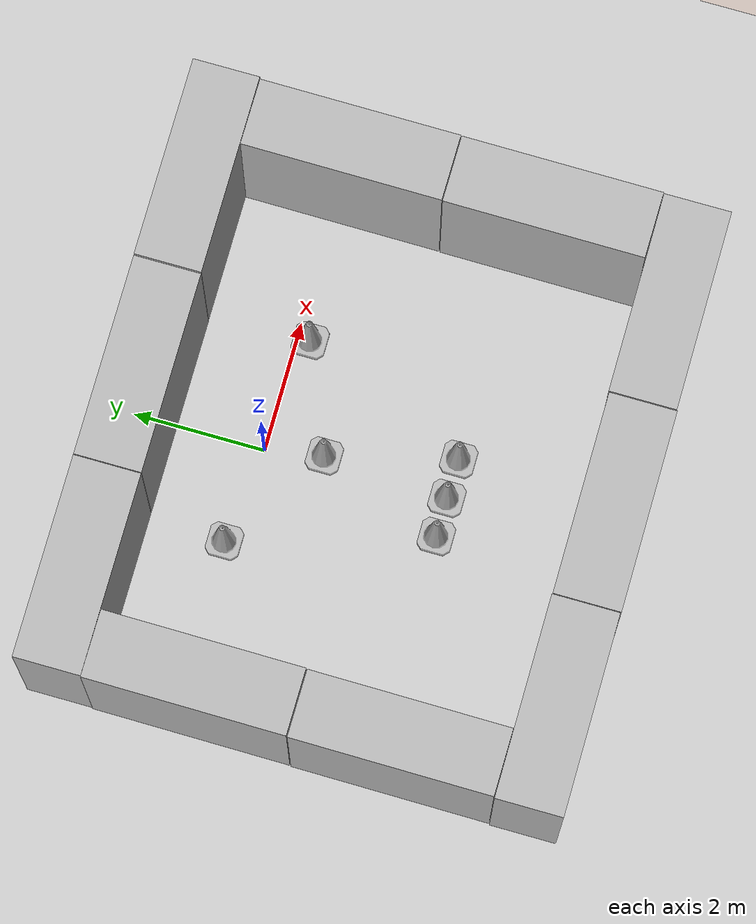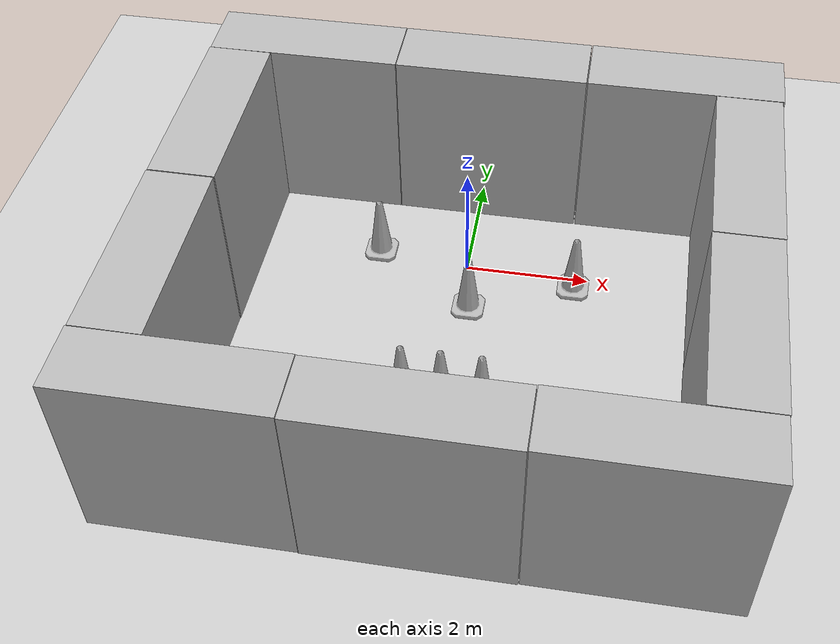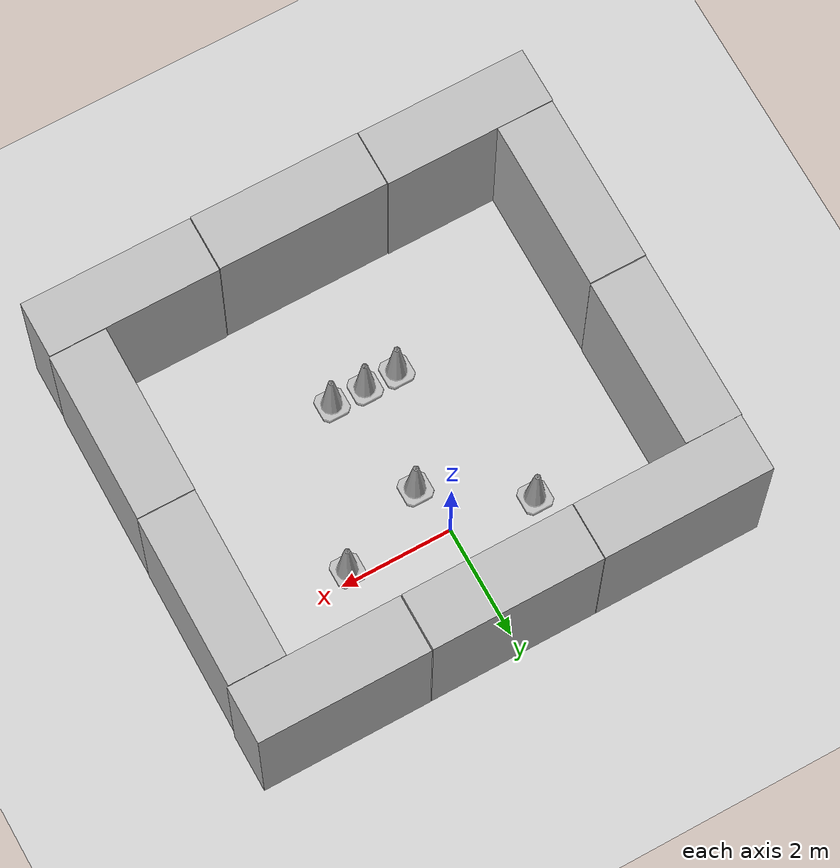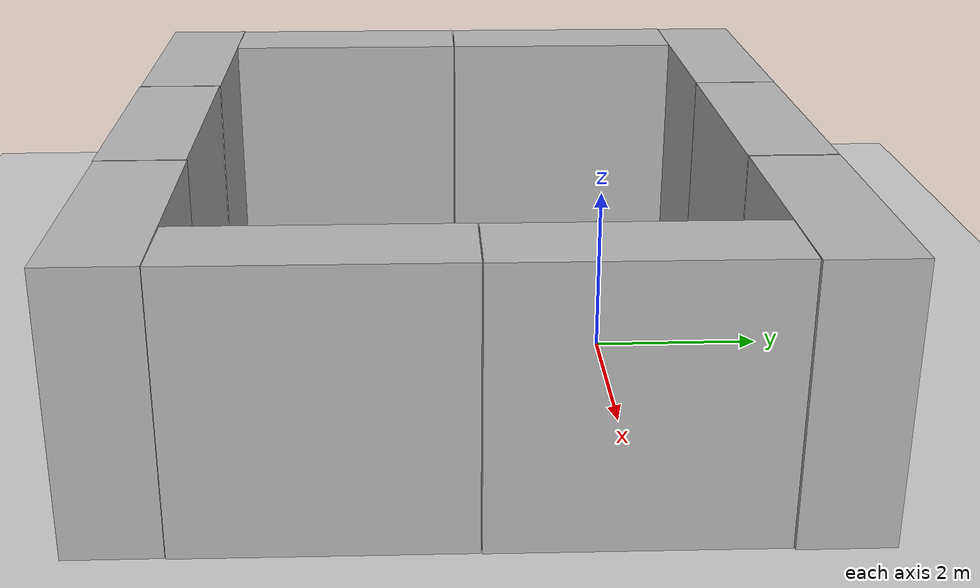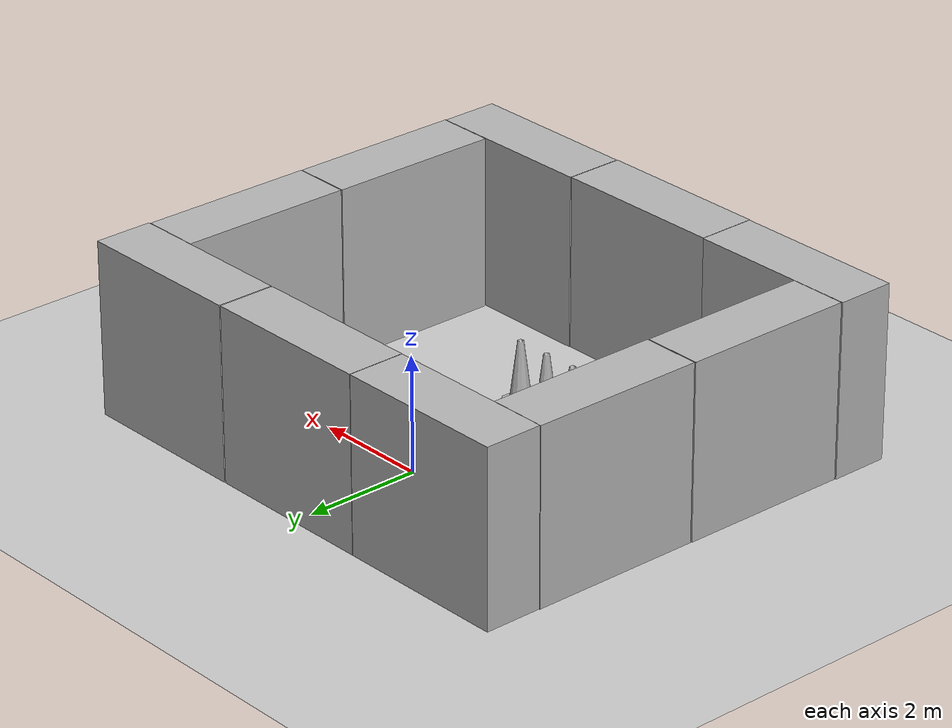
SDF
<sdf version="1.7">
 <world name="default">
  <plugin name="gazebo_ros" filename="libgazebo_ros_init.so"/>
  <plugin name="gazebo_ros_factory" filename="libgazebo_ros_factory.so"/>
  <light name="sun" type="directional">
   <pose>0 0 10 0 -0 0</pose>
   <diffuse>0.8 0.8 0.8 1</diffuse>
   <specular>0.2 0.2 0.2 1</specular>
   <attenuation>
    <range>1000</range>
    <constant>0.9</constant>
    <linear>0.01</linear>
    <quadratic>0.001</quadratic>
   </attenuation>
   <direction>-0.5 0.1 -0.9</direction>
   <spot><inner_angle>0</inner_angle><outer_angle>0</outer_angle><falloff>0</falloff></spot>
  </light>
  <model name="ground_plane">
   <static>1</static>
   <link name="link">
    <collision name="collision">
     <geometry><plane><normal>0 0 1</normal><size>100 100</size></plane></geometry>
     <surface>
      <contact><collide_bitmask>65535</collide_bitmask></contact>
      <friction><ode><mu>100</mu><mu2>50</mu2></ode></friction>
     </surface>
    </collision>
    <visual name="visual">
     <cast_shadows>0</cast_shadows>
     <geometry><plane><normal>0 0 1</normal><size>100 100</size></plane></geometry>
     <material>
      <script><uri>file://media/materials/scripts/gazebo.material</uri><name>Gazebo/Grey</name></script>
     </material>
    </visual>
   </link>
  </model>
  <gravity>0 0 -9.8</gravity>
  <magnetic_field>6e-06 2.3e-05 -4.2e-05</magnetic_field>
  <atmosphere type="adiabatic"/>
  <physics type="ode">
   <max_step_size>0.001</max_step_size>
   <real_time_factor>1</real_time_factor>
   <real_time_update_rate>1000</real_time_update_rate>
  </physics>
  <scene><ambient>0.4 0.4 0.4 1</ambient><background>0.7 0.7 0.7 1</background><shadows>1</shadows></scene>
  <audio><device>default</device></audio>
  <spherical_coordinates>
   <surface_model>EARTH_WGS84</surface_model>
   <latitude_deg>0</latitude_deg>
   <longitude_deg>0</longitude_deg>
   <elevation>0</elevation>
   <heading_deg>0</heading_deg>
  </spherical_coordinates>
  <model name="brick_box_3x1x3">
   <static>1</static>
   <link name="chassis">
    <pose>0 0 1.5 0 -0 0</pose>
    <collision name="collision"><geometry><box><size>3 1 3</size></box></geometry></collision>
    <visual name="visual">
     <geometry><mesh><uri>model://brick_box_3x1x3/meshes/simple_box.dae</uri><scale>3 1 3</scale></mesh></geometry>
     <material>
      <script>
       <uri>model://brick_box_3x1x3/materials/scripts</uri>
       <uri>model://brick_box_3x1x3/materials/textures</uri>
       <name>BrickBox/Diffuse</name>
      </script>
     </material>
    </visual>
   </link>
   <pose>0.144825 1.84263 0 0 -0 0</pose>
  </model>
  <model name="brick_box_3x1x3_0">
   <static>1</static>
   <link name="chassis">
    <pose>0 0 1.5 0 -0 0</pose>
    <collision name="collision"><geometry><box><size>3 1 3</size></box></geometry></collision>
    <visual name="visual">
     <geometry><mesh><uri>model://brick_box_3x1x3/meshes/simple_box.dae</uri><scale>3 1 3</scale></mesh></geometry>
     <material>
      <script>
       <uri>model://brick_box_3x1x3/materials/scripts</uri>
       <uri>model://brick_box_3x1x3/materials/textures</uri>
       <name>BrickBox/Diffuse</name>
      </script>
     </material>
    </visual>
   </link>
   <pose>-2.86673 1.84268 0 0 -0 0</pose>
  </model>
  <model name="brick_box_3x1x3_1">
   <static>1</static>
   <link name="chassis">
    <pose>0 0 1.5 0 -0 0</pose>
    <collision name="collision"><geometry><box><size>3 1 3</size></box></geometry></collision>
    <visual name="visual">
     <geometry><mesh><uri>model://brick_box_3x1x3/meshes/simple_box.dae</uri><scale>3 1 3</scale></mesh></geometry>
     <material>
      <script>
       <uri>model://brick_box_3x1x3/materials/scripts</uri>
       <uri>model://brick_box_3x1x3/materials/textures</uri>
       <name>BrickBox/Diffuse</name>
      </script>
     </material>
    </visual>
   </link>
   <pose>3.16574 1.84601 0 0 -0 0</pose>
  </model>
  <model name="brick_box_3x1x3_1_clone">
   <static>1</static>
   <link name="chassis">
    <pose>0 0 1.5 0 -0 0</pose>
    <collision name="collision"><geometry><box><size>3 1 3</size></box></geometry></collision>
    <visual name="visual">
     <geometry><mesh><uri>model://brick_box_3x1x3/meshes/simple_box.dae</uri><scale>3 1 3</scale></mesh></geometry>
     <material>
      <script>
       <uri>model://brick_box_3x1x3/materials/scripts</uri>
       <uri>model://brick_box_3x1x3/materials/textures</uri>
       <name>BrickBox/Diffuse</name>
      </script>
     </material>
    </visual>
   </link>
   <pose>4.12855 -0.161624 0 0 0 -1.57627</pose>
  </model>
  <model name="brick_box_3x1x3_1_clone_clone">
   <static>1</static>
   <link name="chassis">
    <pose>0 0 1.5 0 -0 0</pose>
    <collision name="collision"><geometry><box><size>3 1 3</size></box></geometry></collision>
    <visual name="visual">
     <geometry><mesh><uri>model://brick_box_3x1x3/meshes/simple_box.dae</uri><scale>3 1 3</scale></mesh></geometry>
     <material>
      <script>
       <uri>model://brick_box_3x1x3/materials/scripts</uri>
       <uri>model://brick_box_3x1x3/materials/textures</uri>
       <name>BrickBox/Diffuse</name>
      </script>
     </material>
    </visual>
   </link>
   <pose>4.10504 -3.1738 0 0 0 -1.57627</pose>
  </model>
  <model name="brick_box_3x1x3_clone">
   <static>1</static>
   <link name="chassis">
    <pose>0 0 1.5 0 -0 0</pose>
    <collision name="collision"><geometry><box><size>3 1 3</size></box></geometry></collision>
    <visual name="visual">
     <geometry><mesh><uri>model://brick_box_3x1x3/meshes/simple_box.dae</uri><scale>3 1 3</scale></mesh></geometry>
     <material>
      <script>
       <uri>model://brick_box_3x1x3/materials/scripts</uri>
       <uri>model://brick_box_3x1x3/materials/textures</uri>
       <name>BrickBox/Diffuse</name>
      </script>
     </material>
    </visual>
   </link>
   <pose>3.08299 -5.18447 0 0 -0 0</pose>
  </model>
  <model name="brick_box_3x1x3_clone_0">
   <static>1</static>
   <link name="chassis">
    <pose>0 0 1.5 0 -0 0</pose>
    <collision name="collision"><geometry><box><size>3 1 3</size></box></geometry></collision>
    <visual name="visual">
     <geometry><mesh><uri>model://brick_box_3x1x3/meshes/simple_box.dae</uri><scale>3 1 3</scale></mesh></geometry>
     <material>
      <script>
       <uri>model://brick_box_3x1x3/materials/scripts</uri>
       <uri>model://brick_box_3x1x3/materials/textures</uri>
       <name>BrickBox/Diffuse</name>
      </script>
     </material>
    </visual>
   </link>
   <pose>0.068909 -5.19549 0 0 -0 0</pose>
  </model>
  <model name="brick_box_3x1x3_clone_1">
   <static>1</static>
   <link name="chassis">
    <pose>0 0 1.5 0 -0 0</pose>
    <collision name="collision"><geometry><box><size>3 1 3</size></box></geometry></collision>
    <visual name="visual">
     <geometry><mesh><uri>model://brick_box_3x1x3/meshes/simple_box.dae</uri><scale>3 1 3</scale></mesh></geometry>
     <material>
      <script>
       <uri>model://brick_box_3x1x3/materials/scripts</uri>
       <uri>model://brick_box_3x1x3/materials/textures</uri>
       <name>BrickBox/Diffuse</name>
      </script>
     </material>
    </visual>
   </link>
   <pose>-2.94173 -5.18475 0 0 -0 0</pose>
  </model>
  <model name="brick_box_3x1x3_1_clone_clone_clone">
   <static>1</static>
   <link name="chassis">
    <pose>0 0 1.5 0 -0 0</pose>
    <collision name="collision"><geometry><box><size>3 1 3</size></box></geometry></collision>
    <visual name="visual">
     <geometry><mesh><uri>model://brick_box_3x1x3/meshes/simple_box.dae</uri><scale>3 1 3</scale></mesh></geometry>
     <material>
      <script>
       <uri>model://brick_box_3x1x3/materials/scripts</uri>
       <uri>model://brick_box_3x1x3/materials/textures</uri>
       <name>BrickBox/Diffuse</name>
      </script>
     </material>
    </visual>
   </link>
   <pose>-3.91524 -3.17693 0 0 0 -1.57627</pose>
  </model>
  <model name="brick_box_3x1x3_1_clone_clone_clone_0">
   <static>1</static>
   <link name="chassis">
    <pose>0 0 1.5 0 -0 0</pose>
    <collision name="collision"><geometry><box><size>3 1 3</size></box></geometry></collision>
    <visual name="visual">
     <geometry><mesh><uri>model://brick_box_3x1x3/meshes/simple_box.dae</uri><scale>3 1 3</scale></mesh></geometry>
     <material>
      <script>
       <uri>model://brick_box_3x1x3/materials/scripts</uri>
       <uri>model://brick_box_3x1x3/materials/textures</uri>
       <name>BrickBox/Diffuse</name>
      </script>
     </material>
    </visual>
   </link>
   <pose>-3.88889 -0.160558 0 0 0 -1.57627</pose>
  </model>
  <model name="Construction Cone">
   <link name="link">
    <collision name="collision">
     <geometry>
      <mesh><scale>10 10 10</scale><uri>model://construction_cone/meshes/construction_cone.dae</uri></mesh>
     </geometry>
    </collision>
    <visual name="visual">
     <geometry>
      <mesh><scale>10 10 10</scale><uri>model://construction_cone/meshes/construction_cone.dae</uri></mesh>
     </geometry>
    </visual>
    <inertial>
     <inertia><ixx>1</ixx><ixy>0</ixy><ixz>0</ixz><iyy>1</iyy><iyz>0</iyz><izz>1</izz></inertia>
     <mass>1</mass>
    </inertial>
   </link>
   <pose>1.77882 -0.191746 -0 0 -0 0</pose>
  </model>
  <model name="Construction Cone_clone">
   <link name="link">
    <collision name="collision">
     <geometry>
      <mesh><scale>10 10 10</scale><uri>model://construction_cone/meshes/construction_cone.dae</uri></mesh>
     </geometry>
    </collision>
    <visual name="visual">
     <geometry>
      <mesh><scale>10 10 10</scale><uri>model://construction_cone/meshes/construction_cone.dae</uri></mesh>
     </geometry>
    </visual>
    <inertial>
     <inertia><ixx>1</ixx><ixy>0</ixy><ixz>0</ixz><iyy>1</iyy><iyz>0</iyz><izz>1</izz></inertia>
     <mass>1</mass>
    </inertial>
   </link>
   <pose>0.649738 -2.79494 -0 0 -1e-06 0</pose>
  </model>
  <model name="Construction Cone_clone_0">
   <link name="link">
    <collision name="collision">
     <geometry>
      <mesh><scale>10 10 10</scale><uri>model://construction_cone/meshes/construction_cone.dae</uri></mesh>
     </geometry>
    </collision>
    <visual name="visual">
     <geometry>
      <mesh><scale>10 10 10</scale><uri>model://construction_cone/meshes/construction_cone.dae</uri></mesh>
     </geometry>
    </visual>
    <inertial>
     <inertia><ixx>1</ixx><ixy>0</ixy><ixz>0</ixz><iyy>1</iyy><iyz>0</iyz><izz>1</izz></inertia>
     <mass>1</mass>
    </inertial>
   </link>
   <pose>0.037456 -2.78643 -1e-05 -1e-06 0 0</pose>
  </model>
  <model name="Construction Cone_clone_1">
   <link name="link">
    <collision name="collision">
     <geometry>
      <mesh><scale>10 10 10</scale><uri>model://construction_cone/meshes/construction_cone.dae</uri></mesh>
     </geometry>
    </collision>
    <visual name="visual">
     <geometry>
      <mesh><scale>10 10 10</scale><uri>model://construction_cone/meshes/construction_cone.dae</uri></mesh>
     </geometry>
    </visual>
    <inertial>
     <inertia><ixx>1</ixx><ixy>0</ixy><ixz>0</ixz><iyy>1</iyy><iyz>0</iyz><izz>1</izz></inertia>
     <mass>1</mass>
    </inertial>
   </link>
   <pose>-0.555371 -2.79094 -0 0 -1e-06 0</pose>
  </model>
  <model name="Construction Cone_clone_2">
   <link name="link">
    <collision name="collision">
     <geometry>
      <mesh><scale>10 10 10</scale><uri>model://construction_cone/meshes/construction_cone.dae</uri></mesh>
     </geometry>
    </collision>
    <visual name="visual">
     <geometry>
      <mesh><scale>10 10 10</scale><uri>model://construction_cone/meshes/construction_cone.dae</uri></mesh>
     </geometry>
    </visual>
    <inertial>
     <inertia><ixx>1</ixx><ixy>0</ixy><ixz>0</ixz><iyy>1</iyy><iyz>0</iyz><izz>1</izz></inertia>
     <mass>1</mass>
    </inertial>
   </link>
   <pose>0.156328 -0.87412 0 0 -0 0</pose>
  </model>
  <model name="Construction Cone_clone_3">
   <link name="link">
    <collision name="collision">
     <geometry>
      <mesh><scale>10 10 10</scale><uri>model://construction_cone/meshes/construction_cone.dae</uri></mesh>
     </geometry>
    </collision>
    <visual name="visual">
     <geometry>
      <mesh><scale>10 10 10</scale><uri>model://construction_cone/meshes/construction_cone.dae</uri></mesh>
     </geometry>
    </visual>
    <inertial>
     <inertia><ixx>1</ixx><ixy>0</ixy><ixz>0</ixz><iyy>1</iyy><iyz>0</iyz><izz>1</izz></inertia>
     <mass>1</mass>
    </inertial>
   </link>
   <pose>-1.473 0.184874 -0 0 -0 0</pose>
  </model>
 </world>
</sdf>
